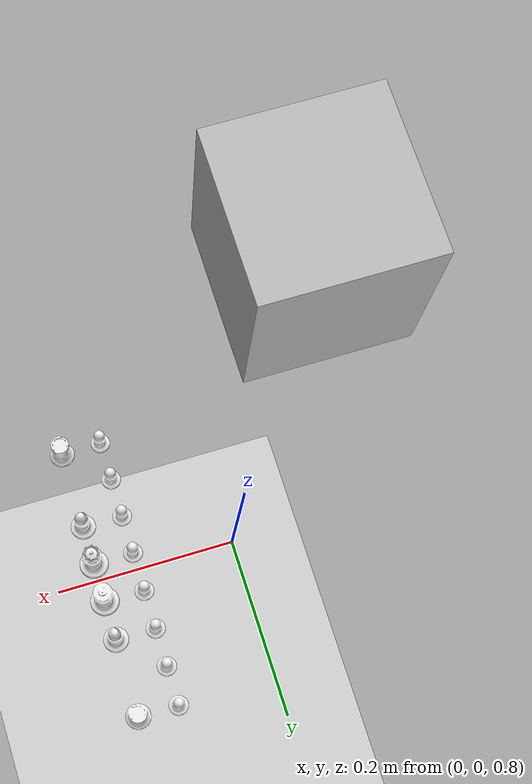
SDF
<sdf version="1.7">
 <world name="default">
  <model name="ground_plane">
   <static>1</static>
   <link name="link">
    <collision name="collision">
     <geometry><plane><normal>0 0 1</normal><size>100 100</size></plane></geometry>
     <surface>
      <contact><collide_bitmask>65535</collide_bitmask></contact>
      <friction><ode><mu>100</mu><mu2>50</mu2></ode></friction>
     </surface>
    </collision>
    <visual name="visual">
     <cast_shadows>0</cast_shadows>
     <geometry><plane><normal>0 0 1</normal><size>100 100</size></plane></geometry>
     <material>
      <script><uri>file://media/materials/scripts/gazebo.material</uri><name>Gazebo/Grey</name></script>
     </material>
    </visual>
   </link>
  </model>
  <model name="pawn_white">
   <link name="link">
    <inertial>
     <mass>0.1</mass>
     <inertia>
      <ixx>0.166667</ixx>
      <ixy>0</ixy>
      <ixz>0</ixz>
      <iyy>0.166667</iyy>
      <iyz>0</iyz>
      <izz>0.166667</izz>
     </inertia>
    </inertial>
    <visual name="visual">
     <geometry><mesh><uri>model://pawn_white/pawn.stl</uri><scale>0.001 0.001 0.001</scale></mesh></geometry>
     <material>
      <lighting>1</lighting>
      <script><uri>file://media/materials/scripts/gazebo.material</uri><name>Gazebo/White</name></script>
      <shader type="pixel"><normal_map>__default__</normal_map></shader>
      <ambient>1 1 1 1</ambient>
      <diffuse>1 1 1 1</diffuse>
      <specular>0.1 0.1 0.1 1</specular>
      <emissive>0 0 0 1</emissive>
     </material>
    </visual>
    <collision name="collision">
     <geometry><mesh><uri>model://pawn_white/pawn.stl</uri><scale>0.001 0.001 0.001</scale></mesh></geometry>
     <surface>
      <friction>
       <ode><mu>1</mu><mu2>1</mu2><fdir1>0 0 0</fdir1><slip1>0</slip1><slip2>0</slip2></ode>
       <torsional>
        <coefficient>1</coefficient>
        <patch_radius>0</patch_radius>
        <surface_radius>0</surface_radius>
        <use_patch_radius>1</use_patch_radius>
        <ode><slip>0</slip></ode>
       </torsional>
      </friction>
      <bounce><restitution_coefficient>0</restitution_coefficient><threshold>1e+06</threshold></bounce>
      <contact>
       <collide_without_contact>0</collide_without_contact>
       <collide_without_contact_bitmask>1</collide_without_contact_bitmask>
       <collide_bitmask>1</collide_bitmask>
       <ode>
        <soft_cfm>0</soft_cfm>
        <soft_erp>0.2</soft_erp>
        <kp>1e+13</kp>
        <kd>1</kd>
        <max_vel>0.01</max_vel>
        <min_depth>0</min_depth>
       </ode>
       <bullet>
        <split_impulse>1</split_impulse>
        <split_impulse_penetration_threshold>-0.01</split_impulse_penetration_threshold>
        <soft_cfm>0</soft_cfm>
        <soft_erp>0.2</soft_erp>
        <kp>1e+13</kp>
        <kd>1</kd>
       </bullet>
      </contact>
     </surface>
    </collision>
   </link>
   <static>0</static>
   <pose>0.108357 -0.153662 0.795207 0.000231 -9e-05 0.003113</pose>
  </model>
  <model name="pawn_white_0">
   <link name="link">
    <inertial>
     <mass>0.1</mass>
     <inertia>
      <ixx>0.166667</ixx>
      <ixy>0</ixy>
      <ixz>0</ixz>
      <iyy>0.166667</iyy>
      <iyz>0</iyz>
      <izz>0.166667</izz>
     </inertia>
    </inertial>
    <visual name="visual">
     <geometry><mesh><uri>model://pawn_white/pawn.stl</uri><scale>0.001 0.001 0.001</scale></mesh></geometry>
     <material>
      <lighting>1</lighting>
      <script><uri>file://media/materials/scripts/gazebo.material</uri><name>Gazebo/White</name></script>
      <shader type="pixel"><normal_map>__default__</normal_map></shader>
      <ambient>1 1 1 1</ambient>
      <diffuse>1 1 1 1</diffuse>
      <specular>0.1 0.1 0.1 1</specular>
      <emissive>0 0 0 1</emissive>
     </material>
    </visual>
    <collision name="collision">
     <geometry><mesh><uri>model://pawn_white/pawn.stl</uri><scale>0.001 0.001 0.001</scale></mesh></geometry>
     <surface>
      <friction>
       <ode><mu>1</mu><mu2>1</mu2><fdir1>0 0 0</fdir1><slip1>0</slip1><slip2>0</slip2></ode>
       <torsional>
        <coefficient>1</coefficient>
        <patch_radius>0</patch_radius>
        <surface_radius>0</surface_radius>
        <use_patch_radius>1</use_patch_radius>
        <ode><slip>0</slip></ode>
       </torsional>
      </friction>
      <bounce><restitution_coefficient>0</restitution_coefficient><threshold>1e+06</threshold></bounce>
      <contact>
       <collide_without_contact>0</collide_without_contact>
       <collide_without_contact_bitmask>1</collide_without_contact_bitmask>
       <collide_bitmask>1</collide_bitmask>
       <ode>
        <soft_cfm>0</soft_cfm>
        <soft_erp>0.2</soft_erp>
        <kp>1e+13</kp>
        <kd>1</kd>
        <max_vel>0.01</max_vel>
        <min_depth>0</min_depth>
       </ode>
       <bullet>
        <split_impulse>1</split_impulse>
        <split_impulse_penetration_threshold>-0.01</split_impulse_penetration_threshold>
        <soft_cfm>0</soft_cfm>
        <soft_erp>0.2</soft_erp>
        <kp>1e+13</kp>
        <kd>1</kd>
       </bullet>
      </contact>
     </surface>
    </collision>
   </link>
   <static>0</static>
   <pose>0.108486 -0.108727 0.79521 -0.000253 0.000518 0.007603</pose>
  </model>
  <model name="pawn_white_1">
   <link name="link">
    <inertial>
     <mass>0.1</mass>
     <inertia>
      <ixx>0.166667</ixx>
      <ixy>0</ixy>
      <ixz>0</ixz>
      <iyy>0.166667</iyy>
      <iyz>0</iyz>
      <izz>0.166667</izz>
     </inertia>
    </inertial>
    <visual name="visual">
     <geometry><mesh><uri>model://pawn_white/pawn.stl</uri><scale>0.001 0.001 0.001</scale></mesh></geometry>
     <material>
      <lighting>1</lighting>
      <script><uri>file://media/materials/scripts/gazebo.material</uri><name>Gazebo/White</name></script>
      <shader type="pixel"><normal_map>__default__</normal_map></shader>
      <ambient>1 1 1 1</ambient>
      <diffuse>1 1 1 1</diffuse>
      <specular>0.1 0.1 0.1 1</specular>
      <emissive>0 0 0 1</emissive>
     </material>
    </visual>
    <collision name="collision">
     <geometry><mesh><uri>model://pawn_white/pawn.stl</uri><scale>0.001 0.001 0.001</scale></mesh></geometry>
     <surface>
      <friction>
       <ode><mu>1</mu><mu2>1</mu2><fdir1>0 0 0</fdir1><slip1>0</slip1><slip2>0</slip2></ode>
       <torsional>
        <coefficient>1</coefficient>
        <patch_radius>0</patch_radius>
        <surface_radius>0</surface_radius>
        <use_patch_radius>1</use_patch_radius>
        <ode><slip>0</slip></ode>
       </torsional>
      </friction>
      <bounce><restitution_coefficient>0</restitution_coefficient><threshold>1e+06</threshold></bounce>
      <contact>
       <collide_without_contact>0</collide_without_contact>
       <collide_without_contact_bitmask>1</collide_without_contact_bitmask>
       <collide_bitmask>1</collide_bitmask>
       <ode>
        <soft_cfm>0</soft_cfm>
        <soft_erp>0.2</soft_erp>
        <kp>1e+13</kp>
        <kd>1</kd>
        <max_vel>0.01</max_vel>
        <min_depth>0</min_depth>
       </ode>
       <bullet>
        <split_impulse>1</split_impulse>
        <split_impulse_penetration_threshold>-0.01</split_impulse_penetration_threshold>
        <soft_cfm>0</soft_cfm>
        <soft_erp>0.2</soft_erp>
        <kp>1e+13</kp>
        <kd>1</kd>
       </bullet>
      </contact>
     </surface>
    </collision>
   </link>
   <static>0</static>
   <pose>0.108511 -0.064142 0.795222 -0.00043 -0.000387 0.022223</pose>
  </model>
  <model name="pawn_white_2">
   <link name="link">
    <inertial>
     <mass>0.1</mass>
     <inertia>
      <ixx>0.166667</ixx>
      <ixy>0</ixy>
      <ixz>0</ixz>
      <iyy>0.166667</iyy>
      <iyz>0</iyz>
      <izz>0.166667</izz>
     </inertia>
    </inertial>
    <visual name="visual">
     <geometry><mesh><uri>model://pawn_white/pawn.stl</uri><scale>0.001 0.001 0.001</scale></mesh></geometry>
     <material>
      <lighting>1</lighting>
      <script><uri>file://media/materials/scripts/gazebo.material</uri><name>Gazebo/White</name></script>
      <shader type="pixel"><normal_map>__default__</normal_map></shader>
      <ambient>1 1 1 1</ambient>
      <diffuse>1 1 1 1</diffuse>
      <specular>0.1 0.1 0.1 1</specular>
      <emissive>0 0 0 1</emissive>
     </material>
    </visual>
    <collision name="collision">
     <geometry><mesh><uri>model://pawn_white/pawn.stl</uri><scale>0.001 0.001 0.001</scale></mesh></geometry>
     <surface>
      <friction>
       <ode><mu>1</mu><mu2>1</mu2><fdir1>0 0 0</fdir1><slip1>0</slip1><slip2>0</slip2></ode>
       <torsional>
        <coefficient>1</coefficient>
        <patch_radius>0</patch_radius>
        <surface_radius>0</surface_radius>
        <use_patch_radius>1</use_patch_radius>
        <ode><slip>0</slip></ode>
       </torsional>
      </friction>
      <bounce><restitution_coefficient>0</restitution_coefficient><threshold>1e+06</threshold></bounce>
      <contact>
       <collide_without_contact>0</collide_without_contact>
       <collide_without_contact_bitmask>1</collide_without_contact_bitmask>
       <collide_bitmask>1</collide_bitmask>
       <ode>
        <soft_cfm>0</soft_cfm>
        <soft_erp>0.2</soft_erp>
        <kp>1e+13</kp>
        <kd>1</kd>
        <max_vel>0.01</max_vel>
        <min_depth>0</min_depth>
       </ode>
       <bullet>
        <split_impulse>1</split_impulse>
        <split_impulse_penetration_threshold>-0.01</split_impulse_penetration_threshold>
        <soft_cfm>0</soft_cfm>
        <soft_erp>0.2</soft_erp>
        <kp>1e+13</kp>
        <kd>1</kd>
       </bullet>
      </contact>
     </surface>
    </collision>
   </link>
   <static>0</static>
   <pose>0.108561 -0.020482 0.795219 -0.000269 -7.5e-05 0.013174</pose>
  </model>
  <model name="pawn_white_3">
   <link name="link">
    <inertial>
     <mass>0.1</mass>
     <inertia>
      <ixx>0.166667</ixx>
      <ixy>0</ixy>
      <ixz>0</ixz>
      <iyy>0.166667</iyy>
      <iyz>0</iyz>
      <izz>0.166667</izz>
     </inertia>
    </inertial>
    <visual name="visual">
     <geometry><mesh><uri>model://pawn_white/pawn.stl</uri><scale>0.001 0.001 0.001</scale></mesh></geometry>
     <material>
      <lighting>1</lighting>
      <script><uri>file://media/materials/scripts/gazebo.material</uri><name>Gazebo/White</name></script>
      <shader type="pixel"><normal_map>__default__</normal_map></shader>
      <ambient>1 1 1 1</ambient>
      <diffuse>1 1 1 1</diffuse>
      <specular>0.1 0.1 0.1 1</specular>
      <emissive>0 0 0 1</emissive>
     </material>
    </visual>
    <collision name="collision">
     <geometry><mesh><uri>model://pawn_white/pawn.stl</uri><scale>0.001 0.001 0.001</scale></mesh></geometry>
     <surface>
      <friction>
       <ode><mu>1</mu><mu2>1</mu2><fdir1>0 0 0</fdir1><slip1>0</slip1><slip2>0</slip2></ode>
       <torsional>
        <coefficient>1</coefficient>
        <patch_radius>0</patch_radius>
        <surface_radius>0</surface_radius>
        <use_patch_radius>1</use_patch_radius>
        <ode><slip>0</slip></ode>
       </torsional>
      </friction>
      <bounce><restitution_coefficient>0</restitution_coefficient><threshold>1e+06</threshold></bounce>
      <contact>
       <collide_without_contact>0</collide_without_contact>
       <collide_without_contact_bitmask>1</collide_without_contact_bitmask>
       <collide_bitmask>1</collide_bitmask>
       <ode>
        <soft_cfm>0</soft_cfm>
        <soft_erp>0.2</soft_erp>
        <kp>1e+13</kp>
        <kd>1</kd>
        <max_vel>0.01</max_vel>
        <min_depth>0</min_depth>
       </ode>
       <bullet>
        <split_impulse>1</split_impulse>
        <split_impulse_penetration_threshold>-0.01</split_impulse_penetration_threshold>
        <soft_cfm>0</soft_cfm>
        <soft_erp>0.2</soft_erp>
        <kp>1e+13</kp>
        <kd>1</kd>
       </bullet>
      </contact>
     </surface>
    </collision>
   </link>
   <static>0</static>
   <pose>0.108597 0.024215 0.7952 -9.2e-05 0.000234 0.006012</pose>
  </model>
  <model name="pawn_white_4">
   <link name="link">
    <inertial>
     <mass>0.1</mass>
     <inertia>
      <ixx>0.166667</ixx>
      <ixy>0</ixy>
      <ixz>0</ixz>
      <iyy>0.166667</iyy>
      <iyz>0</iyz>
      <izz>0.166667</izz>
     </inertia>
    </inertial>
    <visual name="visual">
     <geometry><mesh><uri>model://pawn_white/pawn.stl</uri><scale>0.001 0.001 0.001</scale></mesh></geometry>
     <material>
      <lighting>1</lighting>
      <script><uri>file://media/materials/scripts/gazebo.material</uri><name>Gazebo/White</name></script>
      <shader type="pixel"><normal_map>__default__</normal_map></shader>
      <ambient>1 1 1 1</ambient>
      <diffuse>1 1 1 1</diffuse>
      <specular>0.1 0.1 0.1 1</specular>
      <emissive>0 0 0 1</emissive>
     </material>
    </visual>
    <collision name="collision">
     <geometry><mesh><uri>model://pawn_white/pawn.stl</uri><scale>0.001 0.001 0.001</scale></mesh></geometry>
     <surface>
      <friction>
       <ode><mu>1</mu><mu2>1</mu2><fdir1>0 0 0</fdir1><slip1>0</slip1><slip2>0</slip2></ode>
       <torsional>
        <coefficient>1</coefficient>
        <patch_radius>0</patch_radius>
        <surface_radius>0</surface_radius>
        <use_patch_radius>1</use_patch_radius>
        <ode><slip>0</slip></ode>
       </torsional>
      </friction>
      <bounce><restitution_coefficient>0</restitution_coefficient><threshold>1e+06</threshold></bounce>
      <contact>
       <collide_without_contact>0</collide_without_contact>
       <collide_without_contact_bitmask>1</collide_without_contact_bitmask>
       <collide_bitmask>1</collide_bitmask>
       <ode>
        <soft_cfm>0</soft_cfm>
        <soft_erp>0.2</soft_erp>
        <kp>1e+13</kp>
        <kd>1</kd>
        <max_vel>0.01</max_vel>
        <min_depth>0</min_depth>
       </ode>
       <bullet>
        <split_impulse>1</split_impulse>
        <split_impulse_penetration_threshold>-0.01</split_impulse_penetration_threshold>
        <soft_cfm>0</soft_cfm>
        <soft_erp>0.2</soft_erp>
        <kp>1e+13</kp>
        <kd>1</kd>
       </bullet>
      </contact>
     </surface>
    </collision>
   </link>
   <static>0</static>
   <pose>0.108616 0.068063 0.795219 -0.000171 -0.001281 8.6e-05</pose>
  </model>
  <model name="pawn_white_5">
   <link name="link">
    <inertial>
     <mass>0.1</mass>
     <inertia>
      <ixx>0.166667</ixx>
      <ixy>0</ixy>
      <ixz>0</ixz>
      <iyy>0.166667</iyy>
      <iyz>0</iyz>
      <izz>0.166667</izz>
     </inertia>
    </inertial>
    <visual name="visual">
     <geometry><mesh><uri>model://pawn_white/pawn.stl</uri><scale>0.001 0.001 0.001</scale></mesh></geometry>
     <material>
      <lighting>1</lighting>
      <script><uri>file://media/materials/scripts/gazebo.material</uri><name>Gazebo/White</name></script>
      <shader type="pixel"><normal_map>__default__</normal_map></shader>
      <ambient>1 1 1 1</ambient>
      <diffuse>1 1 1 1</diffuse>
      <specular>0.1 0.1 0.1 1</specular>
      <emissive>0 0 0 1</emissive>
     </material>
    </visual>
    <collision name="collision">
     <geometry><mesh><uri>model://pawn_white/pawn.stl</uri><scale>0.001 0.001 0.001</scale></mesh></geometry>
     <surface>
      <friction>
       <ode><mu>1</mu><mu2>1</mu2><fdir1>0 0 0</fdir1><slip1>0</slip1><slip2>0</slip2></ode>
       <torsional>
        <coefficient>1</coefficient>
        <patch_radius>0</patch_radius>
        <surface_radius>0</surface_radius>
        <use_patch_radius>1</use_patch_radius>
        <ode><slip>0</slip></ode>
       </torsional>
      </friction>
      <bounce><restitution_coefficient>0</restitution_coefficient><threshold>1e+06</threshold></bounce>
      <contact>
       <collide_without_contact>0</collide_without_contact>
       <collide_without_contact_bitmask>1</collide_without_contact_bitmask>
       <collide_bitmask>1</collide_bitmask>
       <ode>
        <soft_cfm>0</soft_cfm>
        <soft_erp>0.2</soft_erp>
        <kp>1e+13</kp>
        <kd>1</kd>
        <max_vel>0.01</max_vel>
        <min_depth>0</min_depth>
       </ode>
       <bullet>
        <split_impulse>1</split_impulse>
        <split_impulse_penetration_threshold>-0.01</split_impulse_penetration_threshold>
        <soft_cfm>0</soft_cfm>
        <soft_erp>0.2</soft_erp>
        <kp>1e+13</kp>
        <kd>1</kd>
       </bullet>
      </contact>
     </surface>
    </collision>
   </link>
   <static>0</static>
   <pose>0.108731 0.111176 0.795211 0.000464 -0.000278 -0.010669</pose>
  </model>
  <model name="pawn_white_6">
   <link name="link">
    <inertial>
     <mass>0.1</mass>
     <inertia>
      <ixx>0.166667</ixx>
      <ixy>0</ixy>
      <ixz>0</ixz>
      <iyy>0.166667</iyy>
      <iyz>0</iyz>
      <izz>0.166667</izz>
     </inertia>
    </inertial>
    <visual name="visual">
     <geometry><mesh><uri>model://pawn_white/pawn.stl</uri><scale>0.001 0.001 0.001</scale></mesh></geometry>
     <material>
      <lighting>1</lighting>
      <script><uri>file://media/materials/scripts/gazebo.material</uri><name>Gazebo/White</name></script>
      <shader type="pixel"><normal_map>__default__</normal_map></shader>
      <ambient>1 1 1 1</ambient>
      <diffuse>1 1 1 1</diffuse>
      <specular>0.1 0.1 0.1 1</specular>
      <emissive>0 0 0 1</emissive>
     </material>
    </visual>
    <collision name="collision">
     <geometry><mesh><uri>model://pawn_white/pawn.stl</uri><scale>0.001 0.001 0.001</scale></mesh></geometry>
     <surface>
      <friction>
       <ode><mu>1</mu><mu2>1</mu2><fdir1>0 0 0</fdir1><slip1>0</slip1><slip2>0</slip2></ode>
       <torsional>
        <coefficient>1</coefficient>
        <patch_radius>0</patch_radius>
        <surface_radius>0</surface_radius>
        <use_patch_radius>1</use_patch_radius>
        <ode><slip>0</slip></ode>
       </torsional>
      </friction>
      <bounce><restitution_coefficient>0</restitution_coefficient><threshold>1e+06</threshold></bounce>
      <contact>
       <collide_without_contact>0</collide_without_contact>
       <collide_without_contact_bitmask>1</collide_without_contact_bitmask>
       <collide_bitmask>1</collide_bitmask>
       <ode>
        <soft_cfm>0</soft_cfm>
        <soft_erp>0.2</soft_erp>
        <kp>1e+13</kp>
        <kd>1</kd>
        <max_vel>0.01</max_vel>
        <min_depth>0</min_depth>
       </ode>
       <bullet>
        <split_impulse>1</split_impulse>
        <split_impulse_penetration_threshold>-0.01</split_impulse_penetration_threshold>
        <soft_cfm>0</soft_cfm>
        <soft_erp>0.2</soft_erp>
        <kp>1e+13</kp>
        <kd>1</kd>
       </bullet>
      </contact>
     </surface>
    </collision>
   </link>
   <static>0</static>
   <pose>0.108595 0.155332 0.795207 -0.000159 0.000213 -0.018115</pose>
  </model>
  <model name="rook_white">
   <link name="link">
    <inertial>
     <mass>0.1</mass>
     <inertia>
      <ixx>0.166667</ixx>
      <ixy>0</ixy>
      <ixz>0</ixz>
      <iyy>0.166667</iyy>
      <iyz>0</iyz>
      <izz>0.166667</izz>
     </inertia>
    </inertial>
    <visual name="visual">
     <geometry><mesh><uri>model://rook_white/rook.stl</uri><scale>0.001 0.001 0.001</scale></mesh></geometry>
     <material>
      <lighting>1</lighting>
      <script><uri>file://media/materials/scripts/gazebo.material</uri><name>Gazebo/White</name></script>
      <shader type="pixel"><normal_map>__default__</normal_map></shader>
      <ambient>1 1 1 1</ambient>
      <diffuse>1 1 1 1</diffuse>
      <specular>0.1 0.1 0.1 1</specular>
      <emissive>0 0 0 1</emissive>
     </material>
    </visual>
    <collision name="collision">
     <geometry><mesh><uri>model://rook_white/rook.stl</uri><scale>0.001 0.001 0.001</scale></mesh></geometry>
     <surface>
      <friction>
       <ode><mu>1</mu><mu2>1</mu2><fdir1>0 0 0</fdir1><slip1>0</slip1><slip2>0</slip2></ode>
       <torsional>
        <coefficient>1</coefficient>
        <patch_radius>0</patch_radius>
        <surface_radius>0</surface_radius>
        <use_patch_radius>1</use_patch_radius>
        <ode><slip>0</slip></ode>
       </torsional>
      </friction>
      <bounce><restitution_coefficient>0</restitution_coefficient><threshold>1e+06</threshold></bounce>
      <contact>
       <collide_without_contact>0</collide_without_contact>
       <collide_without_contact_bitmask>1</collide_without_contact_bitmask>
       <collide_bitmask>1</collide_bitmask>
       <ode>
        <soft_cfm>0</soft_cfm>
        <soft_erp>0.2</soft_erp>
        <kp>1e+13</kp>
        <kd>1</kd>
        <max_vel>0.01</max_vel>
        <min_depth>0</min_depth>
       </ode>
       <bullet>
        <split_impulse>1</split_impulse>
        <split_impulse_penetration_threshold>-0.01</split_impulse_penetration_threshold>
        <soft_cfm>0</soft_cfm>
        <soft_erp>0.2</soft_erp>
        <kp>1e+13</kp>
        <kd>1</kd>
       </bullet>
      </contact>
     </surface>
    </collision>
   </link>
   <static>0</static>
   <pose>0.153473 -0.152845 0.795149 1.9e-05 -4.4e-05 0.002817</pose>
  </model>
  <model name="rook_white_0">
   <link name="link">
    <inertial>
     <mass>0.1</mass>
     <inertia>
      <ixx>0.166667</ixx>
      <ixy>0</ixy>
      <ixz>0</ixz>
      <iyy>0.166667</iyy>
      <iyz>0</iyz>
      <izz>0.166667</izz>
     </inertia>
    </inertial>
    <visual name="visual">
     <geometry><mesh><uri>model://rook_white/rook.stl</uri><scale>0.001 0.001 0.001</scale></mesh></geometry>
     <material>
      <lighting>1</lighting>
      <script><uri>file://media/materials/scripts/gazebo.material</uri><name>Gazebo/White</name></script>
      <shader type="pixel"><normal_map>__default__</normal_map></shader>
      <ambient>1 1 1 1</ambient>
      <diffuse>1 1 1 1</diffuse>
      <specular>0.1 0.1 0.1 1</specular>
      <emissive>0 0 0 1</emissive>
     </material>
    </visual>
    <collision name="collision">
     <geometry><mesh><uri>model://rook_white/rook.stl</uri><scale>0.001 0.001 0.001</scale></mesh></geometry>
     <surface>
      <friction>
       <ode><mu>1</mu><mu2>1</mu2><fdir1>0 0 0</fdir1><slip1>0</slip1><slip2>0</slip2></ode>
       <torsional>
        <coefficient>1</coefficient>
        <patch_radius>0</patch_radius>
        <surface_radius>0</surface_radius>
        <use_patch_radius>1</use_patch_radius>
        <ode><slip>0</slip></ode>
       </torsional>
      </friction>
      <bounce><restitution_coefficient>0</restitution_coefficient><threshold>1e+06</threshold></bounce>
      <contact>
       <collide_without_contact>0</collide_without_contact>
       <collide_without_contact_bitmask>1</collide_without_contact_bitmask>
       <collide_bitmask>1</collide_bitmask>
       <ode>
        <soft_cfm>0</soft_cfm>
        <soft_erp>0.2</soft_erp>
        <kp>1e+13</kp>
        <kd>1</kd>
        <max_vel>0.01</max_vel>
        <min_depth>0</min_depth>
       </ode>
       <bullet>
        <split_impulse>1</split_impulse>
        <split_impulse_penetration_threshold>-0.01</split_impulse_penetration_threshold>
        <soft_cfm>0</soft_cfm>
        <soft_erp>0.2</soft_erp>
        <kp>1e+13</kp>
        <kd>1</kd>
       </bullet>
      </contact>
     </surface>
    </collision>
   </link>
   <static>0</static>
   <pose>0.153551 0.154399 0.795167 -2.4e-05 -4.3e-05 -0.011534</pose>
  </model>
  <model name="bishop_white">
   <link name="link">
    <inertial>
     <mass>0.1</mass>
     <inertia>
      <ixx>0.166667</ixx>
      <ixy>0</ixy>
      <ixz>0</ixz>
      <iyy>0.166667</iyy>
      <iyz>0</iyz>
      <izz>0.166667</izz>
     </inertia>
    </inertial>
    <visual name="visual">
     <geometry><mesh><uri>model://bishop_white/bishop.stl</uri><scale>0.001 0.001 0.001</scale></mesh></geometry>
     <material>
      <lighting>1</lighting>
      <script><uri>file://media/materials/scripts/gazebo.material</uri><name>Gazebo/White</name></script>
      <shader type="pixel"><normal_map>__default__</normal_map></shader>
      <ambient>1 1 1 1</ambient>
      <diffuse>1 1 1 1</diffuse>
      <specular>0.1 0.1 0.1 1</specular>
      <emissive>0 0 0 1</emissive>
     </material>
    </visual>
    <collision name="collision">
     <geometry><mesh><uri>model://bishop_white/bishop.stl</uri><scale>0.001 0.001 0.001</scale></mesh></geometry>
     <surface>
      <friction>
       <ode><mu>1</mu><mu2>1</mu2><fdir1>0 0 0</fdir1><slip1>0</slip1><slip2>0</slip2></ode>
       <torsional>
        <coefficient>1</coefficient>
        <patch_radius>0</patch_radius>
        <surface_radius>0</surface_radius>
        <use_patch_radius>1</use_patch_radius>
        <ode><slip>0</slip></ode>
       </torsional>
      </friction>
      <bounce><restitution_coefficient>0</restitution_coefficient><threshold>1e+06</threshold></bounce>
      <contact>
       <collide_without_contact>0</collide_without_contact>
       <collide_without_contact_bitmask>1</collide_without_contact_bitmask>
       <collide_bitmask>1</collide_bitmask>
       <ode>
        <soft_cfm>0</soft_cfm>
        <soft_erp>0.2</soft_erp>
        <kp>1e+13</kp>
        <kd>1</kd>
        <max_vel>0.01</max_vel>
        <min_depth>0</min_depth>
       </ode>
       <bullet>
        <split_impulse>1</split_impulse>
        <split_impulse_penetration_threshold>-0.01</split_impulse_penetration_threshold>
        <soft_cfm>0</soft_cfm>
        <soft_erp>0.2</soft_erp>
        <kp>1e+13</kp>
        <kd>1</kd>
       </bullet>
      </contact>
     </surface>
    </collision>
   </link>
   <static>0</static>
   <pose>0.153464 -0.064827 0.795068 2e-05 -0.00068 0.003498</pose>
  </model>
  <model name="bishop_white_0">
   <link name="link">
    <inertial>
     <mass>0.1</mass>
     <inertia>
      <ixx>0.166667</ixx>
      <ixy>0</ixy>
      <ixz>0</ixz>
      <iyy>0.166667</iyy>
      <iyz>0</iyz>
      <izz>0.166667</izz>
     </inertia>
    </inertial>
    <visual name="visual">
     <geometry><mesh><uri>model://bishop_white/bishop.stl</uri><scale>0.001 0.001 0.001</scale></mesh></geometry>
     <material>
      <lighting>1</lighting>
      <script><uri>file://media/materials/scripts/gazebo.material</uri><name>Gazebo/White</name></script>
      <shader type="pixel"><normal_map>__default__</normal_map></shader>
      <ambient>1 1 1 1</ambient>
      <diffuse>1 1 1 1</diffuse>
      <specular>0.1 0.1 0.1 1</specular>
      <emissive>0 0 0 1</emissive>
     </material>
    </visual>
    <collision name="collision">
     <geometry><mesh><uri>model://bishop_white/bishop.stl</uri><scale>0.001 0.001 0.001</scale></mesh></geometry>
     <surface>
      <friction>
       <ode><mu>1</mu><mu2>1</mu2><fdir1>0 0 0</fdir1><slip1>0</slip1><slip2>0</slip2></ode>
       <torsional>
        <coefficient>1</coefficient>
        <patch_radius>0</patch_radius>
        <surface_radius>0</surface_radius>
        <use_patch_radius>1</use_patch_radius>
        <ode><slip>0</slip></ode>
       </torsional>
      </friction>
      <bounce><restitution_coefficient>0</restitution_coefficient><threshold>1e+06</threshold></bounce>
      <contact>
       <collide_without_contact>0</collide_without_contact>
       <collide_without_contact_bitmask>1</collide_without_contact_bitmask>
       <collide_bitmask>1</collide_bitmask>
       <ode>
        <soft_cfm>0</soft_cfm>
        <soft_erp>0.2</soft_erp>
        <kp>1e+13</kp>
        <kd>1</kd>
        <max_vel>0.01</max_vel>
        <min_depth>0</min_depth>
       </ode>
       <bullet>
        <split_impulse>1</split_impulse>
        <split_impulse_penetration_threshold>-0.01</split_impulse_penetration_threshold>
        <soft_cfm>0</soft_cfm>
        <soft_erp>0.2</soft_erp>
        <kp>1e+13</kp>
        <kd>1</kd>
       </bullet>
      </contact>
     </surface>
    </collision>
   </link>
   <static>0</static>
   <pose>0.153461 0.067498 0.795055 8e-05 2.3e-05 -0.00803</pose>
  </model>
  <model name="queen_white">
   <link name="link">
    <inertial>
     <mass>0.1</mass>
     <inertia>
      <ixx>0.166667</ixx>
      <ixy>0</ixy>
      <ixz>0</ixz>
      <iyy>0.166667</iyy>
      <iyz>0</iyz>
      <izz>0.166667</izz>
     </inertia>
    </inertial>
    <visual name="visual">
     <geometry><mesh><uri>model://queen_white/queen.stl</uri><scale>0.001 0.001 0.001</scale></mesh></geometry>
     <material>
      <lighting>1</lighting>
      <script><uri>file://media/materials/scripts/gazebo.material</uri><name>Gazebo/White</name></script>
      <shader type="pixel"><normal_map>__default__</normal_map></shader>
      <ambient>1 1 1 1</ambient>
      <diffuse>1 1 1 1</diffuse>
      <specular>0.1 0.1 0.1 1</specular>
      <emissive>0 0 0 1</emissive>
     </material>
    </visual>
    <collision name="collision">
     <geometry><mesh><uri>model://queen_white/queen.stl</uri><scale>0.001 0.001 0.001</scale></mesh></geometry>
     <surface>
      <friction>
       <ode><mu>1</mu><mu2>1</mu2><fdir1>0 0 0</fdir1><slip1>0</slip1><slip2>0</slip2></ode>
       <torsional>
        <coefficient>1</coefficient>
        <patch_radius>0</patch_radius>
        <surface_radius>0</surface_radius>
        <use_patch_radius>1</use_patch_radius>
        <ode><slip>0</slip></ode>
       </torsional>
      </friction>
      <bounce><restitution_coefficient>0</restitution_coefficient><threshold>1e+06</threshold></bounce>
      <contact>
       <collide_without_contact>0</collide_without_contact>
       <collide_without_contact_bitmask>1</collide_without_contact_bitmask>
       <collide_bitmask>1</collide_bitmask>
       <ode>
        <soft_cfm>0</soft_cfm>
        <soft_erp>0.2</soft_erp>
        <kp>1e+13</kp>
        <kd>1</kd>
        <max_vel>0.01</max_vel>
        <min_depth>0</min_depth>
       </ode>
       <bullet>
        <split_impulse>1</split_impulse>
        <split_impulse_penetration_threshold>-0.01</split_impulse_penetration_threshold>
        <soft_cfm>0</soft_cfm>
        <soft_erp>0.2</soft_erp>
        <kp>1e+13</kp>
        <kd>1</kd>
       </bullet>
      </contact>
     </surface>
    </collision>
   </link>
   <static>0</static>
   <pose>0.153514 -0.020466 0.794913 -1.6e-05 0.000315 -0.002689</pose>
  </model>
  <model name="king_white">
   <link name="link">
    <inertial>
     <mass>0.1</mass>
     <inertia>
      <ixx>0.166667</ixx>
      <ixy>0</ixy>
      <ixz>0</ixz>
      <iyy>0.166667</iyy>
      <iyz>0</iyz>
      <izz>0.166667</izz>
     </inertia>
    </inertial>
    <visual name="visual">
     <geometry><mesh><uri>model://king_white/king.stl</uri><scale>0.001 0.001 0.001</scale></mesh></geometry>
     <material>
      <lighting>1</lighting>
      <script><uri>file://media/materials/scripts/gazebo.material</uri><name>Gazebo/White</name></script>
      <shader type="pixel"><normal_map>__default__</normal_map></shader>
      <ambient>1 1 1 1</ambient>
      <diffuse>1 1 1 1</diffuse>
      <specular>0.1 0.1 0.1 1</specular>
      <emissive>0 0 0 1</emissive>
     </material>
    </visual>
    <collision name="collision">
     <geometry><mesh><uri>model://king_white/king.stl</uri><scale>0.001 0.001 0.001</scale></mesh></geometry>
     <surface>
      <friction>
       <ode><mu>1</mu><mu2>1</mu2><fdir1>0 0 0</fdir1><slip1>0</slip1><slip2>0</slip2></ode>
       <torsional>
        <coefficient>1</coefficient>
        <patch_radius>0</patch_radius>
        <surface_radius>0</surface_radius>
        <use_patch_radius>1</use_patch_radius>
        <ode><slip>0</slip></ode>
       </torsional>
      </friction>
      <bounce><restitution_coefficient>0</restitution_coefficient><threshold>1e+06</threshold></bounce>
      <contact>
       <collide_without_contact>0</collide_without_contact>
       <collide_without_contact_bitmask>1</collide_without_contact_bitmask>
       <collide_bitmask>1</collide_bitmask>
       <ode>
        <soft_cfm>0</soft_cfm>
        <soft_erp>0.2</soft_erp>
        <kp>1e+13</kp>
        <kd>1</kd>
        <max_vel>0.01</max_vel>
        <min_depth>0</min_depth>
       </ode>
       <bullet>
        <split_impulse>1</split_impulse>
        <split_impulse_penetration_threshold>-0.01</split_impulse_penetration_threshold>
        <soft_cfm>0</soft_cfm>
        <soft_erp>0.2</soft_erp>
        <kp>1e+13</kp>
        <kd>1</kd>
       </bullet>
      </contact>
     </surface>
    </collision>
   </link>
   <static>0</static>
   <pose>0.153552 0.023127 0.794695 6e-06 -1.8e-05 1.5719</pose>
  </model>
  <model name="camera">
   <static>true</static>
   <pose>0 0 1.5 0 1.571 0</pose>
   <link name="link">
    <visual name="visual"><geometry><box><size>0.1 0.1 0.1</size></box></geometry></visual>
    <sensor name="camera" type="camera">
     <camera>
      <save enabled="true"><path>/tmp/camera_out</path></save>
      <horizontal_fov>1.047</horizontal_fov>
      <image><width>1280</width><height>720</height></image>
      <clip><near>0.1</near><far>100</far></clip>
     </camera>
     <always_on>1</always_on>
     <update_rate>1</update_rate>
    </sensor>
   </link>
  </model>
 </world>
</sdf>
